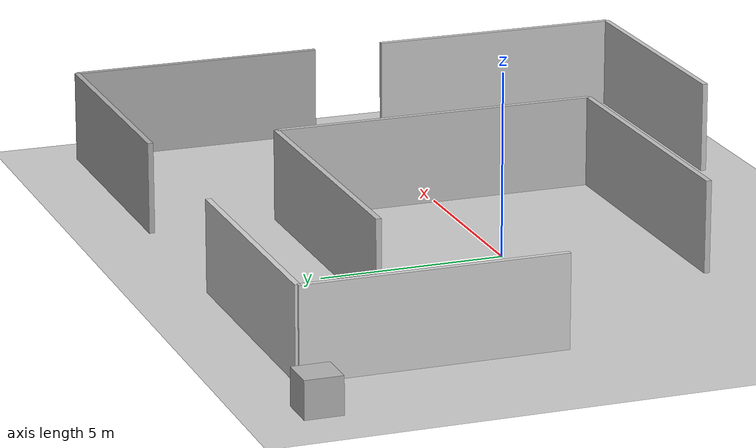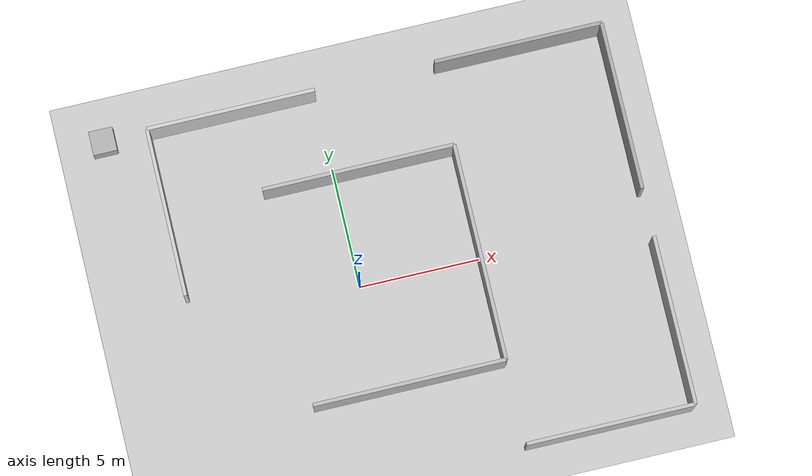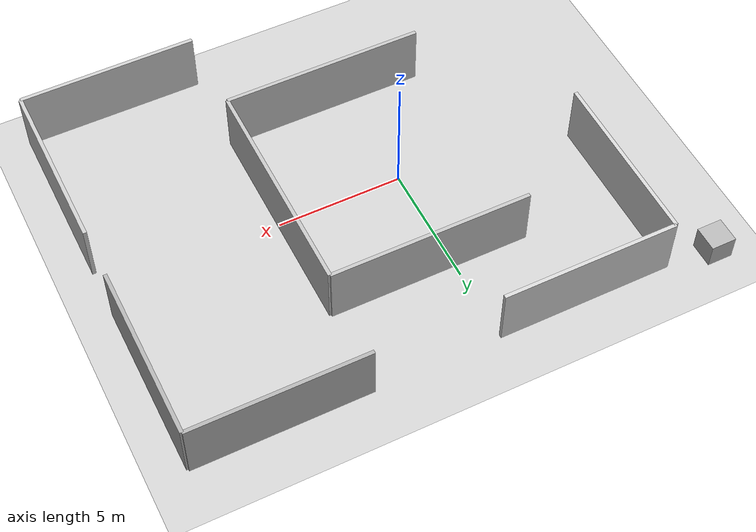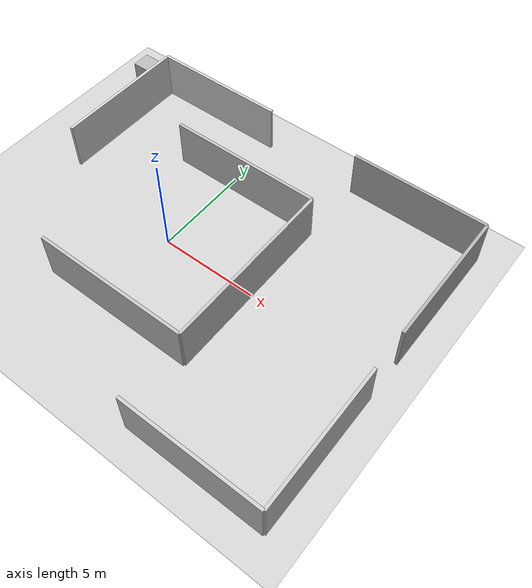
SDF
<sdf version="1.6">
 <world name="my_world_2">
  <physics name="1ms" type="ignored">
   <max_step_size>0.001</max_step_size>
   <real_time_factor>1</real_time_factor>
   <real_time_update_rate>1000</real_time_update_rate>
  </physics>
  <plugin name="ignition::gazebo::systems::Physics" filename="ignition-gazebo-physics-system"/>
  <plugin name="ignition::gazebo::systems::UserCommands" filename="ignition-gazebo-user-commands-system"/>
  <plugin name="ignition::gazebo::systems::SceneBroadcaster" filename="ignition-gazebo-scene-broadcaster-system"/>
  <plugin name="ignition::gazebo::systems::Contact" filename="ignition-gazebo-contact-system"/>
  <gravity>0 0 -9.8</gravity>
  <magnetic_field>6e-06 2.3e-05 -4.2e-05</magnetic_field>
  <atmosphere type="adiabatic"/>
  <scene><ambient>0.4 0.4 0.4 1</ambient><background>0.7 0.7 0.7 1</background><shadows>true</shadows></scene>
  <model name="ground_plane">
   <static>true</static>
   <link name="link">
    <collision name="collision">
     <geometry><plane><normal>0 0 1</normal><size>100 100</size></plane></geometry>
    </collision>
    <visual name="visual">
     <geometry><plane><normal>0 0 1</normal><size>100 100</size></plane></geometry>
     <material>
      <ambient>0.8 0.8 0.8 1</ambient>
      <diffuse>0.8 0.8 0.8 1</diffuse>
      <specular>0.8 0.8 0.8 1</specular>
     </material>
    </visual>
    <inertial>
     <mass>1</mass>
     <inertia><ixx>1</ixx><ixy>0</ixy><ixz>0</ixz><iyy>1</iyy><iyz>0</iyz><izz>1</izz></inertia>
    </inertial>
   </link>
  </model>
  <model name="box">
   <pose>-8.9002 8.17509 0.5 0 -0 0</pose>
   <link name="box_link">
    <inertial>
     <inertia><ixx>0.16666</ixx><ixy>0</ixy><ixz>0</ixz><iyy>0.16666</iyy><iyz>0</iyz><izz>0.16666</izz></inertia>
     <mass>1</mass>
    </inertial>
    <collision name="box_collision"><geometry><box><size>1 1 1</size></box></geometry></collision>
    <visual name="box_visual">
     <geometry><box><size>1 1 1</size></box></geometry>
     <material>
      <ambient>0.3 0.3 0.3 1</ambient>
      <diffuse>0.7 0.7 0.7 1</diffuse>
      <specular>1 1 1 1</specular>
     </material>
    </visual>
   </link>
   <static>false</static>
  </model>
  <model name="LivingRoomWallNorth">
   <static>true</static>
   <link name="link">
    <collision name="collision"><geometry><box><size>8 0.15 2.5</size></box></geometry></collision>
    <visual name="visual">
     <geometry><box><size>8 0.15 2.5</size></box></geometry>
     <material><ambient>0.75 0.75 0.75 1</ambient><diffuse>0.75 0.75 0.75 1</diffuse></material>
    </visual>
   </link>
   <pose>1 4.5 1.25 0 0 0</pose>
  </model>
  <model name="LivingRoomWallSouth">
   <static>true</static>
   <link name="link">
    <collision name="collision"><geometry><box><size>8 0.15 2.5</size></box></geometry></collision>
    <visual name="visual">
     <geometry><box><size>8 0.15 2.5</size></box></geometry>
     <material><ambient>0.75 0.75 0.75 1</ambient><diffuse>0.75 0.75 0.75 1</diffuse></material>
    </visual>
   </link>
   <pose>1 -4.5 1.25 0 0 0</pose>
  </model>
  <model name="LivingRoomWallEast">
   <static>true</static>
   <link name="link">
    <collision name="collision"><geometry><box><size>0.15 9 2.5</size></box></geometry></collision>
    <visual name="visual">
     <geometry><box><size>0.15 9 2.5</size></box></geometry>
     <material><ambient>0.75 0.75 0.75 1</ambient><diffuse>0.75 0.75 0.75 1</diffuse></material>
    </visual>
   </link>
   <pose>5 -0.0 1.25 0 0 0</pose>
  </model>
  <model name="BedroomWallNorth">
   <static>true</static>
   <link name="link">
    <collision name="collision"><geometry><box><size>7 0.15 2.5</size></box></geometry></collision>
    <visual name="visual">
     <geometry><box><size>7 0.15 2.5</size></box></geometry>
     <material><ambient>0.82 0.82 0.82 1</ambient><diffuse>0.82 0.82 0.82 1</diffuse></material>
    </visual>
   </link>
   <pose>-3.5 8 1.25 0 0 0</pose>
  </model>
  <model name="BedroomWallWest">
   <static>true</static>
   <link name="link">
    <collision name="collision"><geometry><box><size>0.15 7 2.5</size></box></geometry></collision>
    <visual name="visual">
     <geometry><box><size>0.15 7 2.5</size></box></geometry>
     <material><ambient>0.82 0.82 0.82 1</ambient><diffuse>0.82 0.82 0.82 1</diffuse></material>
    </visual>
   </link>
   <pose>-7 4.5 1.25 0 0 0</pose>
  </model>
  <model name="StudyWallNorth">
   <static>true</static>
   <link name="link">
    <collision name="collision"><geometry><box><size>7 0.15 2.5</size></box></geometry></collision>
    <visual name="visual">
     <geometry><box><size>7 0.15 2.5</size></box></geometry>
     <material><ambient>0.68 0.68 0.68 1</ambient><diffuse>0.68 0.68 0.68 1</diffuse></material>
    </visual>
   </link>
   <pose>8.5 8 1.25 0 0 0</pose>
  </model>
  <model name="StudyWallEast">
   <static>true</static>
   <link name="link">
    <collision name="collision"><geometry><box><size>0.15 7 2.5</size></box></geometry></collision>
    <visual name="visual">
     <geometry><box><size>0.15 7 2.5</size></box></geometry>
     <material><ambient>0.68 0.68 0.68 1</ambient><diffuse>0.68 0.68 0.68 1</diffuse></material>
    </visual>
   </link>
   <pose>12 4.5 1.25 0 0 0</pose>
  </model>
  <model name="DiningRoomWallSouth">
   <static>true</static>
   <link name="link">
    <collision name="collision"><geometry><box><size>7 0.15 2.5</size></box></geometry></collision>
    <visual name="visual">
     <geometry><box><size>7 0.15 2.5</size></box></geometry>
     <material><ambient>0.78 0.78 0.78 1</ambient><diffuse>0.78 0.78 0.78 1</diffuse></material>
    </visual>
   </link>
   <pose>8.5 -8 1.25 0 0 0</pose>
  </model>
  <model name="DiningRoomWallEast">
   <static>true</static>
   <link name="link">
    <collision name="collision"><geometry><box><size>0.15 7 2.5</size></box></geometry></collision>
    <visual name="visual">
     <geometry><box><size>0.15 7 2.5</size></box></geometry>
     <material><ambient>0.78 0.78 0.78 1</ambient><diffuse>0.78 0.78 0.78 1</diffuse></material>
    </visual>
   </link>
   <pose>12 -4.5 1.25 0 0 0</pose>
  </model>
  <light name="sun" type="directional">
   <pose>0 0 10 0 -0 0</pose>
   <intensity>1</intensity>
   <direction>-0.5 0.1 -0.9</direction>
   <diffuse>0.8 0.8 0.8 1</diffuse>
   <specular>0.2 0.2 0.2 1</specular>
   <attenuation>
    <range>1000</range>
    <linear>0.01</linear>
    <constant>0.90000000000000002</constant>
    <quadratic>0.001</quadratic>
   </attenuation>
   <spot><inner_angle>0</inner_angle><outer_angle>0</outer_angle><falloff>0</falloff></spot>
  </light>
  <light name="directionallight" type="directional">
   <pose>2.56712 5.28118 2 0 -0 0</pose>
   <intensity>1</intensity>
   <direction>0 0 -1</direction>
   <diffuse>0.8 0.8 0.8 1</diffuse>
   <specular>0.2 0.2 0.2 1</specular>
   <attenuation>
    <range>1000</range>
    <linear>0.01</linear>
    <constant>0.90000000000000002</constant>
    <quadratic>0.001</quadratic>
   </attenuation>
   <spot><inner_angle>0</inner_angle><outer_angle>0</outer_angle><falloff>0</falloff></spot>
  </light>
  <light name="directionallight_0" type="directional">
   <pose>2.44064 4.51158 2 0 -0 0</pose>
   <intensity>1</intensity>
   <direction>0 0 -1</direction>
   <diffuse>0.8 0.8 0.8 1</diffuse>
   <specular>0.2 0.2 0.2 1</specular>
   <attenuation>
    <range>1000</range>
    <linear>0.01</linear>
    <constant>0.90000000000000002</constant>
    <quadratic>0.001</quadratic>
   </attenuation>
   <spot><inner_angle>0</inner_angle><outer_angle>0</outer_angle><falloff>0</falloff></spot>
  </light>
 </world>
</sdf>
